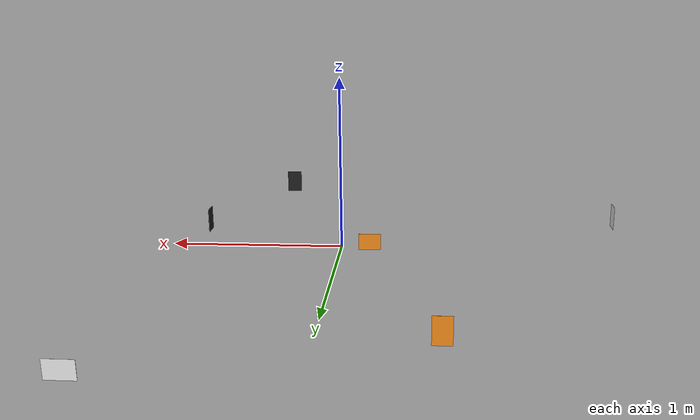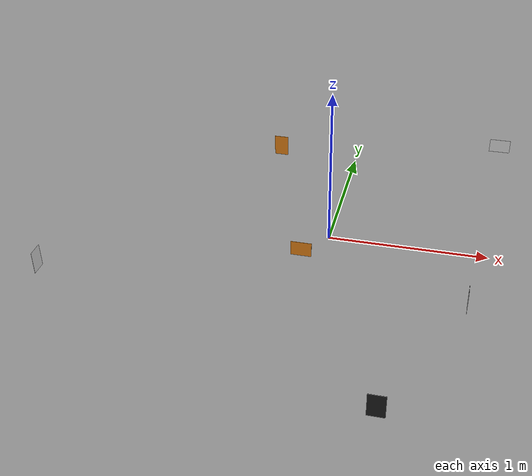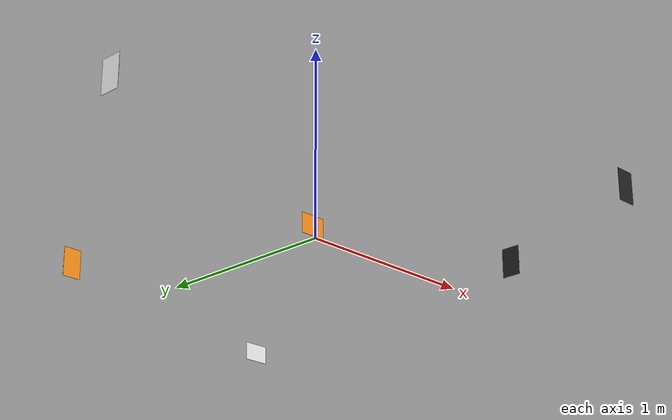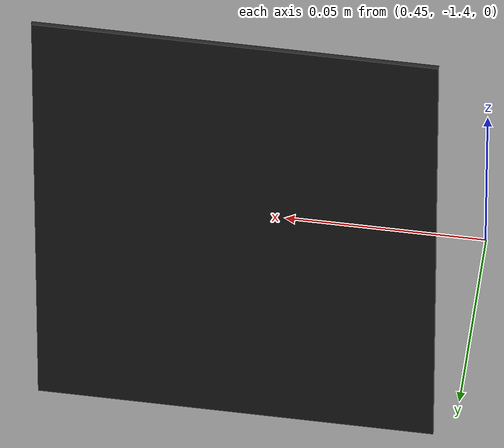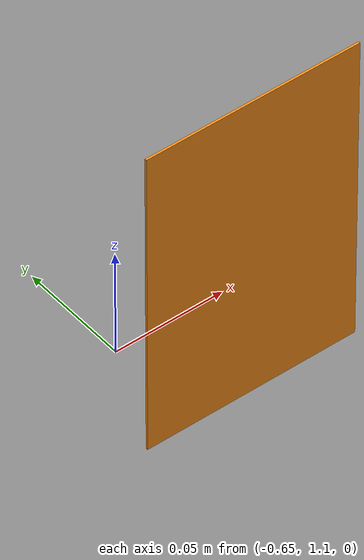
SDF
<?xml version='1.0'?>
<sdf version='1.7'>
  <model name='pets'>
    <model name='cat_black'>
      <static>1</static>
      <link name='link'>
        <collision name='collision'>
          <geometry>
            <box>
              <size>0.001 0.1 0.15</size>
            </box>
          </geometry>
        </collision>
        <visual name='visual'>
          <geometry>
            <box>
              <size>0.001 0.1 0.15</size>
            </box>
          </geometry>
          <material>
            <script>
              <uri>model://cat_black/materials/scripts</uri>
              <uri>model://cat_black/materials/textures</uri>
              <name>BlackCatImage</name>
            </script>
          </material>
        </visual>
      </link>
      <pose>0.905745 -0.448537 0.008333 0 -0 0</pose>
    </model>
    <model name='cat_orange'>
      <static>1</static>
      <link name='link'>
        <collision name='collision'>
          <geometry>
            <box>
              <size>0.001 0.1 0.15</size>
            </box>
          </geometry>
        </collision>
        <visual name='visual'>
          <geometry>
            <box>
              <size>0.001 0.1 0.15</size>
            </box>
          </geometry>
          <material>
            <script>
              <uri>model://cat_orange/materials/scripts</uri>
              <uri>model://cat_orange/materials/textures</uri>
              <name>OrangeCatImage</name>
            </script>
          </material>
        </visual>
      </link>
      <pose>-0.581955 1.10484 0.008333 0 -0 1.5708</pose>
    </model>
    <model name='cat_white'>
      <static>1</static>
      <link name='link'>
        <collision name='collision'>
          <geometry>
            <box>
              <size>0.001 0.1 0.15</size>
            </box>
          </geometry>
        </collision>
        <visual name='visual'>
          <geometry>
            <box>
              <size>0.001 0.1 0.15</size>
            </box>
          </geometry>
          <material>
            <script>
              <uri>model://cat_white/materials/scripts</uri>
              <uri>model://cat_white/materials/textures</uri>
              <name>WhiteCatImage</name>
            </script>
          </material>
        </visual>
      </link>
      <pose>-1.71094 -0.636233 0.008333 0 -0 0</pose>
    </model>
    <model name='dog_black'>
      <static>1</static>
      <link name='link'>
        <collision name='collision'>
          <geometry>
            <box>
              <size>0.001 0.1 0.15</size>
            </box>
          </geometry>
        </collision>
        <visual name='visual'>
          <geometry>
            <box>
              <size>0.001 0.1 0.15</size>
            </box>
          </geometry>
          <material>
            <script>
              <uri>model://dog_black/materials/scripts</uri>
              <uri>model://dog_black/materials/textures</uri>
              <name>BlackDogImage</name>
            </script>
          </material>
        </visual>
      </link>
      <pose>0.510971 -1.38826 0.008333 0 -0 1.5708</pose>
    </model>
    <model name='dog_orange'>
      <static>1</static>
      <link name='link'>
        <collision name='collision'>
          <geometry>
            <box>
              <size>0.001 0.135 0.1</size>
            </box>
          </geometry>
        </collision>
        <visual name='visual'>
          <geometry>
            <box>
              <size>0.001 0.135 0.1</size>
            </box>
          </geometry>
          <material>
            <script>
              <uri>model://dog_orange/materials/scripts</uri>
              <uri>model://dog_orange/materials/textures</uri>
              <name>OrangeDogImage</name>
            </script>
          </material>
        </visual>
      </link>
      <pose>-0.153684 -0.137391 -0.016667 0 -0 1.5708</pose>
    </model>
    <model name='dog_white'>
      <static>1</static>
      <link name='link'>
        <collision name='collision'>
          <geometry>
            <box>
              <size>0.001 0.15 0.1</size>
            </box>
          </geometry>
        </collision>
        <visual name='visual'>
          <geometry>
            <box>
              <size>0.001 0.15 0.1</size>
            </box>
          </geometry>
          <material>
            <script>
              <uri>model://dog_white/materials/scripts</uri>
              <uri>model://dog_white/materials/textures</uri>
              <name>WhiteDogImage</name>
            </script>
          </material>
        </visual>
      </link>
      <pose>1.02985 1.50559 -0.016667 0 0 -1.5708</pose>
    </model>
    <static>0</static>
    <allow_auto_disable>1</allow_auto_disable>
  </model>
</sdf>
